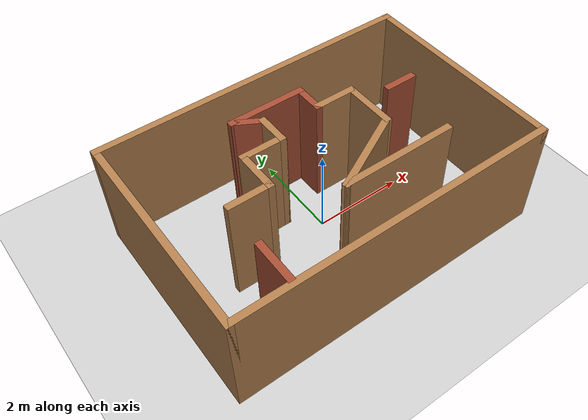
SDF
<?xml version="1.0"?>
<sdf version="1.6">
  <world name="default">

    <include>
      <uri>model://ground_plane</uri>
    </include>

    <include>
      <uri>model://sun</uri>
    </include>

    <scene>
      <shadows>false</shadows>
    </scene>

    <gui fullscreen='0'>
      <camera name='user_camera'>
        <pose frame=''>0.319654 -0.235002 9.29441 0 1.5138 0.009599</pose>
        <view_controller>orbit</view_controller>
        <projection_type>perspective</projection_type>
      </camera>
    </gui>

    <physics type="ode">
      <real_time_update_rate>1000.0</real_time_update_rate>
      <max_step_size>0.001</max_step_size>
      <real_time_factor>1</real_time_factor>
      <ode>
        <solver>
          <type>quick</type>
          <iters>150</iters>
          <precon_iters>0</precon_iters>
          <sor>1.400000</sor>
          <use_dynamic_moi_rescaling>1</use_dynamic_moi_rescaling>
        </solver>
        <constraints>
          <cfm>0.00001</cfm>
          <erp>0.2</erp>
          <contact_max_correcting_vel>2000.000000</contact_max_correcting_vel>
          <contact_surface_layer>0.01000</contact_surface_layer>
        </constraints>
      </ode>
    </physics>

    <include>
	# Test_1 Model
      <uri>model://Test1</uri>
      <pose>0 0 0 0 0 0</pose>
    </include>

	# Cylinder As Obstacle
    <model name='target_cylinder'>
      <pose>2.0 2.0 0.5 0 0 0</pose> <!-- x y z roll pitch yaw -->
      <link name='link'>
        <visual name='visual'>
          <geometry>
            <cylinder>
              <radius>0.2</radius>
              <length>1.0</length>
            </cylinder>
          </geometry>
          <material>
            <script>
              <uri>file://media/materials/scripts/gazebo.material</uri>
              <name>Gazebo/Red</name>
            </script>
          </material>
        </visual>
        <collision name='collision'>
          <geometry>
            <cylinder>
              <radius>0.2</radius>
              <length>1.0</length>
            </cylinder>
          </geometry>
        </collision>
      </link>
    </model>

  </world>
</sdf>

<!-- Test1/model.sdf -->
<sdf version='1.7'>
  <model name='Test1'>
    <pose>1.08 -0.73 0 0 -0 0</pose>
    <link name='Wall_0'>
      <collision name='Wall_0_Collision'>
        <geometry>
          <box>
            <size>7.25 0.15 2.5</size>
          </box>
        </geometry>
        <pose>0 0 1.25 0 -0 0</pose>
      </collision>
      <visual name='Wall_0_Visual'>
        <pose>0 0 1.25 0 -0 0</pose>
        <geometry>
          <box>
            <size>7.25 0.15 2.5</size>
          </box>
        </geometry>
        <material>
          <script>
            <uri>file://media/materials/scripts/gazebo.material</uri>
            <name>Gazebo/Wood</name>
          </script>
          <ambient>1 1 1 1</ambient>
        </material>
        <meta>
          <layer>0</layer>
        </meta>
      </visual>
      <pose>0 -2.3 0 0 -0 0</pose>
    </link>
    <link name='Wall_1'>
      <collision name='Wall_1_Collision'>
        <geometry>
          <box>
            <size>4.75 0.15 2.5</size>
          </box>
        </geometry>
        <pose>0 0 1.25 0 -0 0</pose>
      </collision>
      <visual name='Wall_1_Visual'>
        <pose>0 0 1.25 0 -0 0</pose>
        <geometry>
          <box>
            <size>4.75 0.15 2.5</size>
          </box>
        </geometry>
        <material>
          <script>
            <uri>file://media/materials/scripts/gazebo.material</uri>
            <name>Gazebo/Wood</name>
          </script>
          <ambient>1 1 1 1</ambient>
        </material>
        <meta>
          <layer>0</layer>
        </meta>
      </visual>
      <pose>3.55 0 0 0 -0 1.5708</pose>
    </link>
    <link name='Wall_10'>
      <collision name='Wall_10_Collision'>
        <geometry>
          <box>
            <size>0.75 0.15 2.5</size>
          </box>
        </geometry>
        <pose>0 0 1.25 0 -0 0</pose>
      </collision>
      <visual name='Wall_10_Visual'>
        <pose>0 0 1.25 0 -0 0</pose>
        <geometry>
          <box>
            <size>0.75 0.15 2.5</size>
          </box>
        </geometry>
        <material>
          <script>
            <uri>file://media/materials/scripts/gazebo.material</uri>
            <name>Gazebo/Bricks</name>
          </script>
          <ambient>1 1 1 1</ambient>
        </material>
        <meta>
          <layer>0</layer>
        </meta>
      </visual>
      <pose>-0.838392 1.27519 0 0 -0 2.61799</pose>
    </link>
    <link name='Wall_11'>
      <collision name='Wall_11_Collision'>
        <geometry>
          <box>
            <size>1.75 0.15 2.5</size>
          </box>
        </geometry>
        <pose>0 0 1.25 0 -0 0</pose>
      </collision>
      <visual name='Wall_11_Visual'>
        <pose>0 0 1.25 0 -0 0</pose>
        <geometry>
          <box>
            <size>1.75 0.15 2.5</size>
          </box>
        </geometry>
        <material>
          <script>
            <uri>file://media/materials/scripts/gazebo.material</uri>
            <name>Gazebo/Bricks</name>
          </script>
          <ambient>1 1 1 1</ambient>
        </material>
        <meta>
          <layer>0</layer>
        </meta>
      </visual>
      <pose>-0.2982 1.42519 0 0 -0 0</pose>
    </link>
    <link name='Wall_12'>
      <collision name='Wall_12_Collision'>
        <geometry>
          <box>
            <size>0.75 0.15 2.5</size>
          </box>
        </geometry>
        <pose>0 0 1.25 0 -0 0</pose>
      </collision>
      <visual name='Wall_12_Visual'>
        <pose>0 0 1.25 0 -0 0</pose>
        <geometry>
          <box>
            <size>0.75 0.15 2.5</size>
          </box>
        </geometry>
        <material>
          <script>
            <uri>file://media/materials/scripts/gazebo.material</uri>
            <name>Gazebo/Bricks</name>
          </script>
          <ambient>1 1 1 1</ambient>
        </material>
        <meta>
          <layer>0</layer>
        </meta>
      </visual>
      <pose>0.5018 1.12519 0 0 -0 -1.5708</pose>
    </link>
    <link name='Wall_13'>
      <collision name='Wall_13_Collision'>
        <geometry>
          <box>
            <size>1 0.15 2.5</size>
          </box>
        </geometry>
        <pose>0 0 1.25 0 -0 0</pose>
      </collision>
      <visual name='Wall_13_Visual'>
        <pose>0 0 1.25 0 -0 0</pose>
        <geometry>
          <box>
            <size>1 0.15 2.5</size>
          </box>
        </geometry>
        <material>
          <script>
            <uri>file://media/materials/scripts/gazebo.material</uri>
            <name>Gazebo/Wood</name>
          </script>
          <ambient>1 1 1 1</ambient>
        </material>
        <meta>
          <layer>0</layer>
        </meta>
      </visual>
      <pose>0.9268 0.825194 0 0 -0 0</pose>
    </link>
    <link name='Wall_14'>
      <collision name='Wall_14_Collision'>
        <geometry>
          <box>
            <size>1.25 0.15 2.5</size>
          </box>
        </geometry>
        <pose>0 0 1.25 0 -0 0</pose>
      </collision>
      <visual name='Wall_14_Visual'>
        <pose>0 0 1.25 0 -0 0</pose>
        <geometry>
          <box>
            <size>1.25 0.15 2.5</size>
          </box>
        </geometry>
        <material>
          <script>
            <uri>file://media/materials/scripts/gazebo.material</uri>
            <name>Gazebo/Wood</name>
          </script>
          <ambient>1 1 1 1</ambient>
        </material>
        <meta>
          <layer>0</layer>
        </meta>
      </visual>
      <pose>1.3518 0.275194 0 0 -0 -1.5708</pose>
    </link>
    <link name='Wall_15'>
      <collision name='Wall_15_Collision'>
        <geometry>
          <box>
            <size>2.02805 0.15 2.5</size>
          </box>
        </geometry>
        <pose>0 0 1.25 0 -0 0</pose>
      </collision>
      <visual name='Wall_15_Visual'>
        <pose>0 0 1.25 0 -0 0</pose>
        <geometry>
          <box>
            <size>2.02805 0.15 2.5</size>
          </box>
        </geometry>
        <material>
          <script>
            <uri>file://media/materials/scripts/gazebo.material</uri>
            <name>Gazebo/Wood</name>
          </script>
          <ambient>1 1 1 1</ambient>
        </material>
        <meta>
          <layer>0</layer>
        </meta>
      </visual>
      <pose>0.520815 -0.712109 0 0 -0 -2.65717</pose>
    </link>
    <link name='Wall_16'>
      <collision name='Wall_16_Collision'>
        <geometry>
          <box>
            <size>2.5975 0.15 2.5</size>
          </box>
        </geometry>
        <pose>0 0 1.25 0 -0 0</pose>
      </collision>
      <visual name='Wall_16_Visual'>
        <pose>0 0 1.25 0 -0 0</pose>
        <geometry>
          <box>
            <size>2.5975 0.15 2.5</size>
          </box>
        </geometry>
        <material>
          <script>
            <uri>file://media/materials/scripts/gazebo.material</uri>
            <name>Gazebo/Wood</name>
          </script>
          <ambient>1 1 1 1</ambient>
        </material>
        <meta>
          <layer>0</layer>
        </meta>
      </visual>
      <pose>0.913316 -1.15046 0 0 -0 -0.000855</pose>
    </link>
    <link name='Wall_18'>
      <collision name='Wall_18_Collision'>
        <geometry>
          <box>
            <size>1 0.15 2.5</size>
          </box>
        </geometry>
        <pose>0 0 1.25 0 -0 0</pose>
      </collision>
      <visual name='Wall_18_Visual'>
        <pose>0 0 1.25 0 -0 0</pose>
        <geometry>
          <box>
            <size>1 0.15 2.5</size>
          </box>
        </geometry>
        <material>
          <script>
            <uri>file://media/materials/scripts/gazebo.material</uri>
            <name>Gazebo/Bricks</name>
          </script>
          <ambient>1 1 1 1</ambient>
        </material>
        <meta>
          <layer>0</layer>
        </meta>
      </visual>
      <pose>-2.30518 -1.76061 0 0 -0 -1.5708</pose>
    </link>
    <link name='Wall_2'>
      <collision name='Wall_2_Collision'>
        <geometry>
          <box>
            <size>7.25 0.15 2.5</size>
          </box>
        </geometry>
        <pose>0 0 1.25 0 -0 0</pose>
      </collision>
      <visual name='Wall_2_Visual'>
        <pose>0 0 1.25 0 -0 0</pose>
        <geometry>
          <box>
            <size>7.25 0.15 2.5</size>
          </box>
        </geometry>
        <material>
          <script>
            <uri>file://media/materials/scripts/gazebo.material</uri>
            <name>Gazebo/Wood</name>
          </script>
          <ambient>1 1 1 1</ambient>
        </material>
        <meta>
          <layer>0</layer>
        </meta>
      </visual>
      <pose>0 2.3 0 0 -0 3.14159</pose>
    </link>
    <link name='Wall_20'>
      <collision name='Wall_20_Collision'>
        <geometry>
          <box>
            <size>0.75 0.15 2.5</size>
          </box>
        </geometry>
        <pose>0 0 1.25 0 -0 0</pose>
      </collision>
      <visual name='Wall_20_Visual'>
        <pose>0 0 1.25 0 -0 0</pose>
        <geometry>
          <box>
            <size>0.75 0.15 2.5</size>
          </box>
        </geometry>
        <material>
          <script>
            <uri>file://media/materials/scripts/gazebo.material</uri>
            <name>Gazebo/Bricks</name>
          </script>
          <ambient>1 1 1 1</ambient>
        </material>
        <meta>
          <layer>0</layer>
        </meta>
      </visual>
      <pose>2.30405 0.42 0 0 -0 0</pose>
    </link>
    <link name='Wall_4'>
      <collision name='Wall_4_Collision'>
        <geometry>
          <box>
            <size>4.75 0.15 2.5</size>
          </box>
        </geometry>
        <pose>0 0 1.25 0 -0 0</pose>
      </collision>
      <visual name='Wall_4_Visual'>
        <pose>0 0 1.25 0 -0 0</pose>
        <geometry>
          <box>
            <size>4.75 0.15 2.5</size>
          </box>
        </geometry>
        <material>
          <script>
            <uri>file://media/materials/scripts/gazebo.material</uri>
            <name>Gazebo/Wood</name>
          </script>
          <ambient>1 1 1 1</ambient>
        </material>
        <meta>
          <layer>0</layer>
        </meta>
      </visual>
      <pose>-3.55 0 0 0 -0 -1.5708</pose>
    </link>
    <link name='Wall_6'>
      <collision name='Wall_6_Collision'>
        <geometry>
          <box>
            <size>1 0.15 2.5</size>
          </box>
        </geometry>
        <pose>0 0 1.25 0 -0 0</pose>
      </collision>
      <visual name='Wall_6_Visual'>
        <pose>0 0 1.25 0 -0 0</pose>
        <geometry>
          <box>
            <size>1 0.15 2.5</size>
          </box>
        </geometry>
        <material>
          <script>
            <uri>file://media/materials/scripts/gazebo.material</uri>
            <name>Gazebo/Wood</name>
          </script>
          <ambient>1 1 1 1</ambient>
        </material>
        <meta>
          <layer>0</layer>
        </meta>
      </visual>
      <pose>-1.85358 -0.324805 0 0 -0 0</pose>
    </link>
    <link name='Wall_7'>
      <collision name='Wall_7_Collision'>
        <geometry>
          <box>
            <size>1 0.15 2.5</size>
          </box>
        </geometry>
        <pose>0 0 1.25 0 -0 0</pose>
      </collision>
      <visual name='Wall_7_Visual'>
        <pose>0 0 1.25 0 -0 0</pose>
        <geometry>
          <box>
            <size>1 0.15 2.5</size>
          </box>
        </geometry>
        <material>
          <script>
            <uri>file://media/materials/scripts/gazebo.material</uri>
            <name>Gazebo/Wood</name>
          </script>
          <ambient>1 1 1 1</ambient>
        </material>
        <meta>
          <layer>0</layer>
        </meta>
      </visual>
      <pose>-1.42858 0.100194 0 0 -0 1.5708</pose>
    </link>
    <link name='Wall_8'>
      <collision name='Wall_8_Collision'>
        <geometry>
          <box>
            <size>1 0.15 2.5</size>
          </box>
        </geometry>
        <pose>0 0 1.25 0 -0 0</pose>
      </collision>
      <visual name='Wall_8_Visual'>
        <pose>0 0 1.25 0 -0 0</pose>
        <geometry>
          <box>
            <size>1 0.15 2.5</size>
          </box>
        </geometry>
        <material>
          <script>
            <uri>file://media/materials/scripts/gazebo.material</uri>
            <name>Gazebo/Wood</name>
          </script>
          <ambient>1 1 1 1</ambient>
        </material>
        <meta>
          <layer>0</layer>
        </meta>
      </visual>
      <pose>-1.00358 0.525194 0 0 -0 0</pose>
    </link>
    <link name='Wall_9'>
      <collision name='Wall_9_Collision'>
        <geometry>
          <box>
            <size>0.75 0.15 2.5</size>
          </box>
        </geometry>
        <pose>0 0 1.25 0 -0 0</pose>
      </collision>
      <visual name='Wall_9_Visual'>
        <pose>0 0 1.25 0 -0 0</pose>
        <geometry>
          <box>
            <size>0.75 0.15 2.5</size>
          </box>
        </geometry>
        <material>
          <script>
            <uri>file://media/materials/scripts/gazebo.material</uri>
            <name>Gazebo/Wood</name>
          </script>
          <ambient>1 1 1 1</ambient>
        </material>
        <meta>
          <layer>0</layer>
        </meta>
      </visual>
      <pose>-0.578584 0.825194 0 0 -0 1.5708</pose>
    </link>
    <static>1</static>
  </model>
</sdf>
